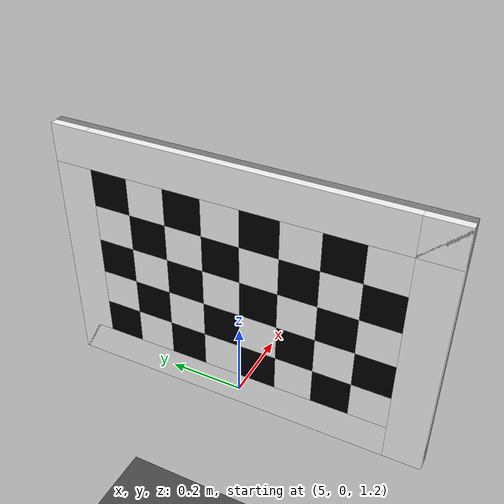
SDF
<sdf version="1.6">
 <world name="default">
  <light name="sun" type="directional">
   <pose>0 0 10 0 -0 0</pose>
   <diffuse>0.8 0.8 0.8 1</diffuse>
   <specular>0.2 0.2 0.2 1</specular>
   <attenuation>
    <range>1000</range>
    <constant>0.9</constant>
    <linear>0.01</linear>
    <quadratic>0.001</quadratic>
   </attenuation>
   <direction>-0.5 0.1 -0.9</direction>
   <spot><inner_angle>0</inner_angle><outer_angle>0</outer_angle><falloff>0</falloff></spot>
  </light>
  <model name="ground_plane">
   <static>1</static>
   <link name="link">
    <collision name="collision">
     <geometry><plane><normal>0 0 1</normal><size>100 100</size></plane></geometry>
     <surface><friction><ode><mu>100</mu><mu2>50</mu2></ode></friction></surface>
    </collision>
    <visual name="visual">
     <cast_shadows>0</cast_shadows>
     <geometry><plane><normal>0 0 1</normal><size>100 100</size></plane></geometry>
     <material>
      <script><uri>file://media/materials/scripts/gazebo.material</uri><name>Gazebo/Grey</name></script>
     </material>
    </visual>
   </link>
  </model>
  <gravity>0 0 -9.8</gravity>
  <magnetic_field>6e-06 2.3e-05 -4.2e-05</magnetic_field>
  <atmosphere type="adiabatic"/>
  <physics name="default_physics" default="0" type="ode">
   <max_step_size>0.001</max_step_size>
   <real_time_factor>1</real_time_factor>
   <real_time_update_rate>1000</real_time_update_rate>
  </physics>
  <scene><ambient>0.4 0.4 0.4 1</ambient><background>0.7 0.7 0.7 1</background><shadows>1</shadows></scene>
  <spherical_coordinates>
   <surface_model>EARTH_WGS84</surface_model>
   <latitude_deg>0</latitude_deg>
   <longitude_deg>0</longitude_deg>
   <elevation>0</elevation>
   <heading_deg>0</heading_deg>
  </spherical_coordinates>
  <model name="asphalt_plane">
   <static>1</static>
   <link name="link">
    <collision name="collision"><geometry><box><size>20 20 0.1</size></box></geometry></collision>
    <visual name="visual">
     <cast_shadows>0</cast_shadows>
     <geometry><box><size>20 20 0.1</size></box></geometry>
     <material>
      <script>
       <uri>model://asphalt_plane/materials/scripts</uri>
       <uri>model://asphalt_plane/materials/textures</uri>
       <name>vrc/asphalt</name>
      </script>
     </material>
    </visual>
   </link>
   <pose>11.0728 1.08226 -0.05 0 -0 0</pose>
  </model>
  <audio><device>default</device></audio>
  <model name="landmark">
   <static>1</static>
   <link name="base_link">
    <collision name="collision"><geometry><box><size>1 0.7 0.02</size></box></geometry></collision>
    <visual name="back">
     <pose>0 0 0.03 0 -0 0</pose>
     <geometry><box><size>1 0.7 0.02</size></box></geometry>
     <material>
      <ambient>0.5 0.5 0.5 1</ambient>
      <specular>0.5 0.5 0.5 1</specular>
      <diffuse>0.5 0.5 0.5 1</diffuse>
     </material>
    </visual>
    <inertial><mass>0.1</mass></inertial>
    <visual name="border0">
     <pose>0.45 0 0.01 0 -0 0</pose>
     <geometry><box><size>0.1 0.7 0.02</size></box></geometry>
     <material><ambient>1 1 1 1</ambient><specular>1 1 1 1</specular><diffuse>1 1 1 1</diffuse></material>
    </visual>
    <visual name="border1">
     <pose>-0.45 0 0.01 0 -0 0</pose>
     <geometry><box><size>0.1 0.7 0.02</size></box></geometry>
     <material><ambient>1 1 1 1</ambient><specular>1 1 1 1</specular><diffuse>1 1 1 1</diffuse></material>
    </visual>
    <visual name="border2">
     <pose>0 0.3 0.01 0 -0 0</pose>
     <geometry><box><size>1 0.1 0.02</size></box></geometry>
     <material><ambient>1 1 1 1</ambient><specular>1 1 1 1</specular><diffuse>1 1 1 1</diffuse></material>
    </visual>
    <visual name="border3">
     <pose>0 -0.3 0.01 0 -0 0</pose>
     <geometry><box><size>1 0.1 0.02</size></box></geometry>
     <material><ambient>1 1 1 1</ambient><specular>1 1 1 1</specular><diffuse>1 1 1 1</diffuse></material>
    </visual>
    <visual name="74">
     <pose>0.35 0.2 0.01 0 -0 0</pose>
     <geometry><box><size>0.1 0.1 0.02</size></box></geometry>
     <material><ambient>0 0 0 1</ambient><specular>0 0 0 1</specular><diffuse>0 0 0 1</diffuse></material>
    </visual>
    <visual name="73">
     <pose>0.35 0.1 0.01 0 -0 0</pose>
     <geometry><box><size>0.1 0.1 0.02</size></box></geometry>
     <material><ambient>1 1 1 1</ambient><specular>1 1 1 1</specular><diffuse>1 1 1 1</diffuse></material>
    </visual>
    <visual name="72">
     <pose>0.35 0 0.01 0 -0 0</pose>
     <geometry><box><size>0.1 0.1 0.02</size></box></geometry>
     <material><ambient>0 0 0 1</ambient><specular>0 0 0 1</specular><diffuse>0 0 0 1</diffuse></material>
    </visual>
    <visual name="71">
     <pose>0.35 -0.1 0.01 0 -0 0</pose>
     <geometry><box><size>0.1 0.1 0.02</size></box></geometry>
     <material><ambient>1 1 1 1</ambient><specular>1 1 1 1</specular><diffuse>1 1 1 1</diffuse></material>
    </visual>
    <visual name="70">
     <pose>0.35 -0.2 0.01 0 -0 0</pose>
     <geometry><box><size>0.1 0.1 0.02</size></box></geometry>
     <material><ambient>0 0 0 1</ambient><specular>0 0 0 1</specular><diffuse>0 0 0 1</diffuse></material>
    </visual>
    <visual name="64">
     <pose>0.25 0.2 0.01 0 -0 0</pose>
     <geometry><box><size>0.1 0.1 0.02</size></box></geometry>
     <material><ambient>1 1 1 1</ambient><specular>1 1 1 1</specular><diffuse>1 1 1 1</diffuse></material>
    </visual>
    <visual name="63">
     <pose>0.25 0.1 0.01 0 -0 0</pose>
     <geometry><box><size>0.1 0.1 0.02</size></box></geometry>
     <material><ambient>0 0 0 1</ambient><specular>0 0 0 1</specular><diffuse>0 0 0 1</diffuse></material>
    </visual>
    <visual name="62">
     <pose>0.25 0 0.01 0 -0 0</pose>
     <geometry><box><size>0.1 0.1 0.02</size></box></geometry>
     <material><ambient>1 1 1 1</ambient><specular>1 1 1 1</specular><diffuse>1 1 1 1</diffuse></material>
    </visual>
    <visual name="61">
     <pose>0.25 -0.1 0.01 0 -0 0</pose>
     <geometry><box><size>0.1 0.1 0.02</size></box></geometry>
     <material><ambient>0 0 0 1</ambient><specular>0 0 0 1</specular><diffuse>0 0 0 1</diffuse></material>
    </visual>
    <visual name="60">
     <pose>0.25 -0.2 0.01 0 -0 0</pose>
     <geometry><box><size>0.1 0.1 0.02</size></box></geometry>
     <material><ambient>1 1 1 1</ambient><specular>1 1 1 1</specular><diffuse>1 1 1 1</diffuse></material>
    </visual>
    <visual name="54">
     <pose>0.15 0.2 0.01 0 -0 0</pose>
     <geometry><box><size>0.1 0.1 0.02</size></box></geometry>
     <material><ambient>0 0 0 1</ambient><specular>0 0 0 1</specular><diffuse>0 0 0 1</diffuse></material>
    </visual>
    <visual name="53">
     <pose>0.15 0.1 0.01 0 -0 0</pose>
     <geometry><box><size>0.1 0.1 0.02</size></box></geometry>
     <material><ambient>1 1 1 1</ambient><specular>1 1 1 1</specular><diffuse>1 1 1 1</diffuse></material>
    </visual>
    <visual name="52">
     <pose>0.15 0 0.01 0 -0 0</pose>
     <geometry><box><size>0.1 0.1 0.02</size></box></geometry>
     <material><ambient>0 0 0 1</ambient><specular>0 0 0 1</specular><diffuse>0 0 0 1</diffuse></material>
    </visual>
    <visual name="51">
     <pose>0.15 -0.1 0.01 0 -0 0</pose>
     <geometry><box><size>0.1 0.1 0.02</size></box></geometry>
     <material><ambient>1 1 1 1</ambient><specular>1 1 1 1</specular><diffuse>1 1 1 1</diffuse></material>
    </visual>
    <visual name="50">
     <pose>0.15 -0.2 0.01 0 -0 0</pose>
     <geometry><box><size>0.1 0.1 0.02</size></box></geometry>
     <material><ambient>0 0 0 1</ambient><specular>0 0 0 1</specular><diffuse>0 0 0 1</diffuse></material>
    </visual>
    <visual name="44">
     <pose>0.05 0.2 0.01 0 -0 0</pose>
     <geometry><box><size>0.1 0.1 0.02</size></box></geometry>
     <material><ambient>1 1 1 1</ambient><specular>1 1 1 1</specular><diffuse>1 1 1 1</diffuse></material>
    </visual>
    <visual name="43">
     <pose>0.05 0.1 0.01 0 -0 0</pose>
     <geometry><box><size>0.1 0.1 0.02</size></box></geometry>
     <material><ambient>0 0 0 1</ambient><specular>0 0 0 1</specular><diffuse>0 0 0 1</diffuse></material>
    </visual>
    <visual name="42">
     <pose>0.05 0 0.01 0 -0 0</pose>
     <geometry><box><size>0.1 0.1 0.02</size></box></geometry>
     <material><ambient>1 1 1 1</ambient><specular>1 1 1 1</specular><diffuse>1 1 1 1</diffuse></material>
    </visual>
    <visual name="41">
     <pose>0.05 -0.1 0.01 0 -0 0</pose>
     <geometry><box><size>0.1 0.1 0.02</size></box></geometry>
     <material><ambient>0 0 0 1</ambient><specular>0 0 0 1</specular><diffuse>0 0 0 1</diffuse></material>
    </visual>
    <visual name="40">
     <pose>0.05 -0.2 0.01 0 -0 0</pose>
     <geometry><box><size>0.1 0.1 0.02</size></box></geometry>
     <material><ambient>1 1 1 1</ambient><specular>1 1 1 1</specular><diffuse>1 1 1 1</diffuse></material>
    </visual>
    <visual name="34">
     <pose>-0.05 0.2 0.01 0 -0 0</pose>
     <geometry><box><size>0.1 0.1 0.02</size></box></geometry>
     <material><ambient>0 0 0 1</ambient><specular>0 0 0 1</specular><diffuse>0 0 0 1</diffuse></material>
    </visual>
    <visual name="33">
     <pose>-0.05 0.1 0.01 0 -0 0</pose>
     <geometry><box><size>0.1 0.1 0.02</size></box></geometry>
     <material><ambient>1 1 1 1</ambient><specular>1 1 1 1</specular><diffuse>1 1 1 1</diffuse></material>
    </visual>
    <visual name="32">
     <pose>-0.05 0 0.01 0 -0 0</pose>
     <geometry><box><size>0.1 0.1 0.02</size></box></geometry>
     <material><ambient>0 0 0 1</ambient><specular>0 0 0 1</specular><diffuse>0 0 0 1</diffuse></material>
    </visual>
    <visual name="31">
     <pose>-0.05 -0.1 0.01 0 -0 0</pose>
     <geometry><box><size>0.1 0.1 0.02</size></box></geometry>
     <material><ambient>1 1 1 1</ambient><specular>1 1 1 1</specular><diffuse>1 1 1 1</diffuse></material>
    </visual>
    <visual name="30">
     <pose>-0.05 -0.2 0.01 0 -0 0</pose>
     <geometry><box><size>0.1 0.1 0.02</size></box></geometry>
     <material><ambient>0 0 0 1</ambient><specular>0 0 0 1</specular><diffuse>0 0 0 1</diffuse></material>
    </visual>
    <visual name="24">
     <pose>-0.15 0.2 0.01 0 -0 0</pose>
     <geometry><box><size>0.1 0.1 0.02</size></box></geometry>
     <material><ambient>1 1 1 1</ambient><specular>1 1 1 1</specular><diffuse>1 1 1 1</diffuse></material>
    </visual>
    <visual name="23">
     <pose>-0.15 0.1 0.01 0 -0 0</pose>
     <geometry><box><size>0.1 0.1 0.02</size></box></geometry>
     <material><ambient>0 0 0 1</ambient><specular>0 0 0 1</specular><diffuse>0 0 0 1</diffuse></material>
    </visual>
    <visual name="22">
     <pose>-0.15 0 0.01 0 -0 0</pose>
     <geometry><box><size>0.1 0.1 0.02</size></box></geometry>
     <material><ambient>1 1 1 1</ambient><specular>1 1 1 1</specular><diffuse>1 1 1 1</diffuse></material>
    </visual>
    <visual name="21">
     <pose>-0.15 -0.1 0.01 0 -0 0</pose>
     <geometry><box><size>0.1 0.1 0.02</size></box></geometry>
     <material><ambient>0 0 0 1</ambient><specular>0 0 0 1</specular><diffuse>0 0 0 1</diffuse></material>
    </visual>
    <visual name="20">
     <pose>-0.15 -0.2 0.01 0 -0 0</pose>
     <geometry><box><size>0.1 0.1 0.02</size></box></geometry>
     <material><ambient>1 1 1 1</ambient><specular>1 1 1 1</specular><diffuse>1 1 1 1</diffuse></material>
    </visual>
    <visual name="14">
     <pose>-0.25 0.2 0.01 0 -0 0</pose>
     <geometry><box><size>0.1 0.1 0.02</size></box></geometry>
     <material><ambient>0 0 0 1</ambient><specular>0 0 0 1</specular><diffuse>0 0 0 1</diffuse></material>
    </visual>
    <visual name="13">
     <pose>-0.25 0.1 0.01 0 -0 0</pose>
     <geometry><box><size>0.1 0.1 0.02</size></box></geometry>
     <material><ambient>1 1 1 1</ambient><specular>1 1 1 1</specular><diffuse>1 1 1 1</diffuse></material>
    </visual>
    <visual name="12">
     <pose>-0.25 0 0.01 0 -0 0</pose>
     <geometry><box><size>0.1 0.1 0.02</size></box></geometry>
     <material><ambient>0 0 0 1</ambient><specular>0 0 0 1</specular><diffuse>0 0 0 1</diffuse></material>
    </visual>
    <visual name="11">
     <pose>-0.25 -0.1 0.01 0 -0 0</pose>
     <geometry><box><size>0.1 0.1 0.02</size></box></geometry>
     <material><ambient>1 1 1 1</ambient><specular>1 1 1 1</specular><diffuse>1 1 1 1</diffuse></material>
    </visual>
    <visual name="10">
     <pose>-0.25 -0.2 0.01 0 -0 0</pose>
     <geometry><box><size>0.1 0.1 0.02</size></box></geometry>
     <material><ambient>0 0 0 1</ambient><specular>0 0 0 1</specular><diffuse>0 0 0 1</diffuse></material>
    </visual>
    <visual name="04">
     <pose>-0.35 0.2 0.01 0 -0 0</pose>
     <geometry><box><size>0.1 0.1 0.02</size></box></geometry>
     <material><ambient>1 1 1 1</ambient><specular>1 1 1 1</specular><diffuse>1 1 1 1</diffuse></material>
    </visual>
    <visual name="03">
     <pose>-0.35 0.1 0.01 0 -0 0</pose>
     <geometry><box><size>0.1 0.1 0.02</size></box></geometry>
     <material><ambient>0 0 0 1</ambient><specular>0 0 0 1</specular><diffuse>0 0 0 1</diffuse></material>
    </visual>
    <visual name="02">
     <pose>-0.35 0 0.01 0 -0 0</pose>
     <geometry><box><size>0.1 0.1 0.02</size></box></geometry>
     <material><ambient>1 1 1 1</ambient><specular>1 1 1 1</specular><diffuse>1 1 1 1</diffuse></material>
    </visual>
    <visual name="01">
     <pose>-0.35 -0.1 0.01 0 -0 0</pose>
     <geometry><box><size>0.1 0.1 0.02</size></box></geometry>
     <material><ambient>0 0 0 1</ambient><specular>0 0 0 1</specular><diffuse>0 0 0 1</diffuse></material>
    </visual>
    <visual name="00">
     <pose>-0.35 -0.2 0.01 0 -0 0</pose>
     <geometry><box><size>0.1 0.1 0.02</size></box></geometry>
     <material><ambient>1 1 1 1</ambient><specular>1 1 1 1</specular><diffuse>1 1 1 1</diffuse></material>
    </visual>
   </link>
   <pose>5 0 1.5 1.57079 -0 1.57079</pose>
  </model>
 </world>
</sdf>
